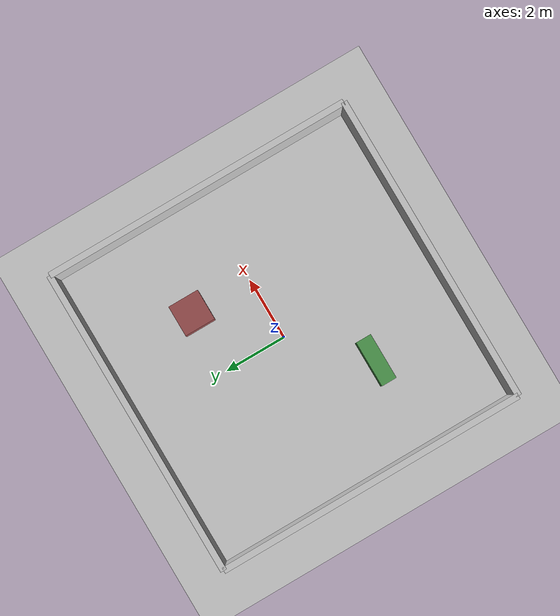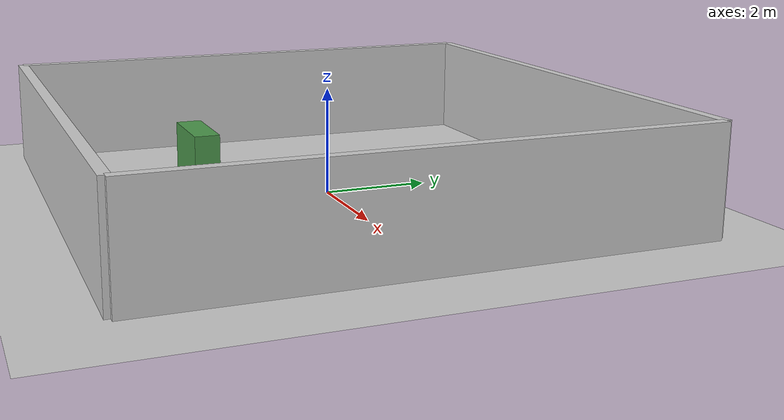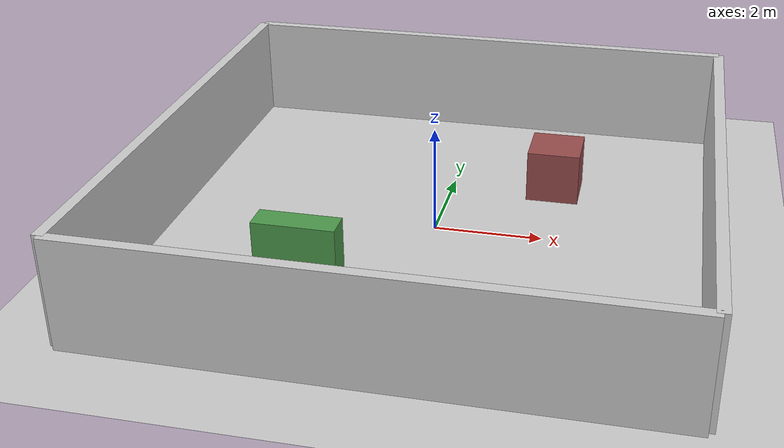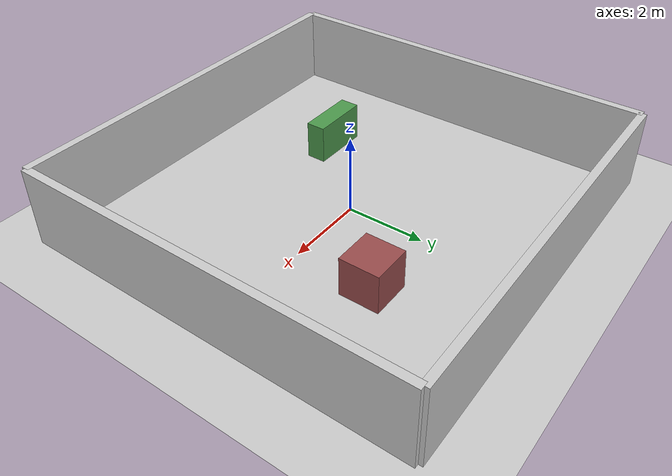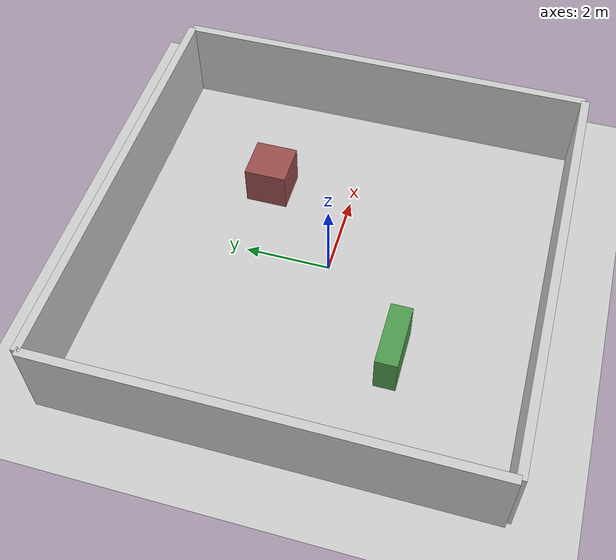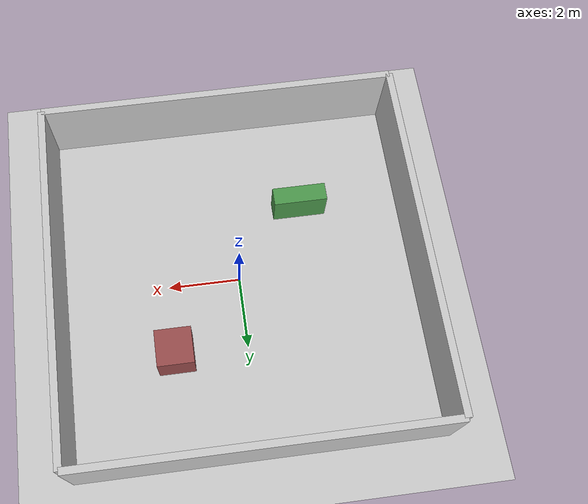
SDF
<?xml version="1.0" ?>
<sdf version="1.8">
  <world name="default">
    <!-- Essential Gazebo Harmonic plugins -->
    <plugin filename="gz-sim-physics-system" name="gz::sim::systems::Physics"/>
    <plugin filename="gz-sim-user-commands-system" name="gz::sim::systems::UserCommands"/>
    <plugin filename="gz-sim-scene-broadcaster-system" name="gz::sim::systems::SceneBroadcaster"/>
    <plugin filename="gz-sim-sensors-system" name="gz::sim::systems::Sensors">
      <render_engine>ogre2</render_engine>
    </plugin>

    <include>
      <uri>https://fuel.gazebosim.org/1.0/OpenRobotics/models/Ground Plane</uri>
    </include>
    <include>
      <uri>https://fuel.gazebosim.org/1.0/OpenRobotics/models/Sun</uri>
    </include>
    <!-- Simple house structure using basic shapes -->
    <model name="wall_1">
      <static>true</static>
      <pose>5 0 1 0 0 0</pose>
      <link name="link">
        <collision name="collision">
          <geometry>
            <box>
              <size>0.2 10 2</size>
            </box>
          </geometry>
        </collision>
        <visual name="visual">
          <geometry>
            <box>
              <size>0.2 10 2</size>
            </box>
          </geometry>
          <material>
            <ambient>0.8 0.8 0.8 1</ambient>
            <diffuse>0.8 0.8 0.8 1</diffuse>
          </material>
        </visual>
      </link>
    </model>

    <model name="wall_2">
      <static>true</static>
      <pose>-5 0 1 0 0 0</pose>
      <link name="link">
        <collision name="collision">
          <geometry>
            <box>
              <size>0.2 10 2</size>
            </box>
          </geometry>
        </collision>
        <visual name="visual">
          <geometry>
            <box>
              <size>0.2 10 2</size>
            </box>
          </geometry>
          <material>
            <ambient>0.8 0.8 0.8 1</ambient>
            <diffuse>0.8 0.8 0.8 1</diffuse>
          </material>
        </visual>
      </link>
    </model>

    <model name="wall_3">
      <static>true</static>
      <pose>0 5 1 0 0 1.5707</pose>
      <link name="link">
        <collision name="collision">
          <geometry>
            <box>
              <size>0.2 10 2</size>
            </box>
          </geometry>
        </collision>
        <visual name="visual">
          <geometry>
            <box>
              <size>0.2 10 2</size>
            </box>
          </geometry>
          <material>
            <ambient>0.8 0.8 0.8 1</ambient>
            <diffuse>0.8 0.8 0.8 1</diffuse>
          </material>
        </visual>
      </link>
    </model>

    <model name="wall_4">
      <static>true</static>
      <pose>0 -5 1 0 0 1.5707</pose>
      <link name="link">
        <collision name="collision">
          <geometry>
            <box>
              <size>0.2 10 2</size>
            </box>
          </geometry>
        </collision>
        <visual name="visual">
          <geometry>
            <box>
              <size>0.2 10 2</size>
            </box>
          </geometry>
          <material>
            <ambient>0.8 0.8 0.8 1</ambient>
            <diffuse>0.8 0.8 0.8 1</diffuse>
          </material>
        </visual>
      </link>
    </model>

    <!-- Interior obstacles for exploration -->
    <model name="obstacle_1">
      <static>true</static>
      <pose>2 2 0.5 0 0 0</pose>
      <link name="link">
        <collision name="collision">
          <geometry>
            <box>
              <size>1 1 1</size>
            </box>
          </geometry>
        </collision>
        <visual name="visual">
          <geometry>
            <box>
              <size>1 1 1</size>
            </box>
          </geometry>
          <material>
            <ambient>0.6 0.3 0.3 1</ambient>
            <diffuse>0.6 0.3 0.3 1</diffuse>
          </material>
        </visual>
      </link>
    </model>

    <model name="obstacle_2">
      <static>true</static>
      <pose>-2 -2 0.5 0 0 0</pose>
      <link name="link">
        <collision name="collision">
          <geometry>
            <box>
              <size>1.5 0.5 1</size>
            </box>
          </geometry>
        </collision>
        <visual name="visual">
          <geometry>
            <box>
              <size>1.5 0.5 1</size>
            </box>
          </geometry>
          <material>
            <ambient>0.3 0.6 0.3 1</ambient>
            <diffuse>0.3 0.6 0.3 1</diffuse>
          </material>
        </visual>
      </link>
    </model>

    <!-- Only one ROS interface plugin is required per world, as any other plugin can connect a Gazebo
         topic to a ROS topic (or vise versa). -->

    <spherical_coordinates>
      <surface_model>EARTH_WGS84</surface_model>
      <latitude_deg>47.3667</latitude_deg>
      <longitude_deg>8.5500</longitude_deg>
      <elevation>500.0</elevation>
      <heading_deg>0</heading_deg>
    </spherical_coordinates>
    <physics type='ode'>
      <ode>
        <solver>
          <type>quick</type>
          <iters>1000</iters>
          <sor>1.3</sor>
        </solver>
        <constraints>
          <cfm>0</cfm>
          <erp>0.2</erp>
          <contact_max_correcting_vel>100</contact_max_correcting_vel>
          <contact_surface_layer>0.001</contact_surface_layer>
        </constraints>
      </ode>
      <max_step_size>0.01</max_step_size>
      <real_time_factor>1</real_time_factor>
      <real_time_update_rate>100</real_time_update_rate>
      <gravity>0 0 -9.8</gravity>
    </physics>
  </world>
</sdf>
